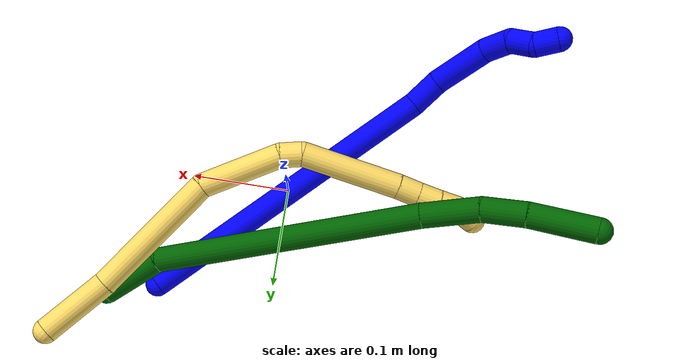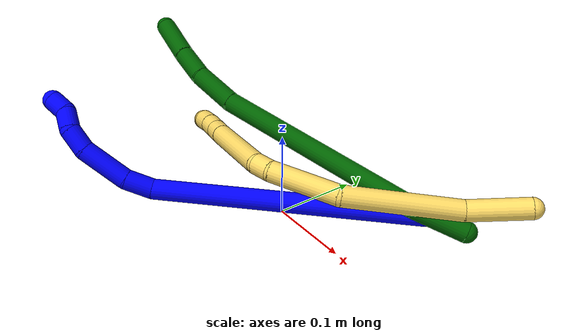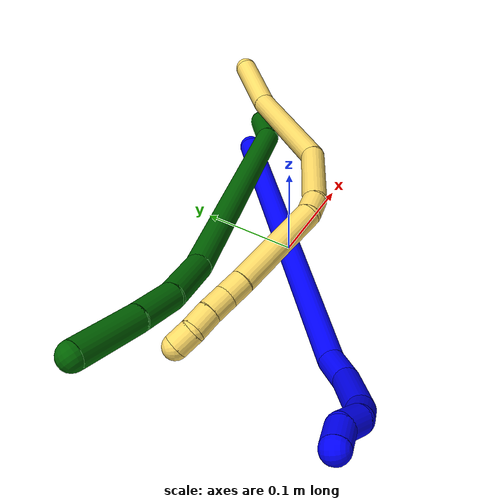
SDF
<sdf version="1.7">
 <world name="default">
  <model name="photoneo_s_sensor">
   <static>1</static>
   <pose>0 0 2 1.57079 1.57079 3.14159</pose>
   <link name="link">
    <inertial><mass>0.1</mass></inertial>
    <sensor name="sensor" type="depth">
     <update_rate>30</update_rate>
     <camera>
      <horizontal_fov>1.22</horizontal_fov>
      <image><width>1920</width><height>1200</height><format>B8G8R8</format></image>
      <clip><near>0.1</near><far>4</far></clip>
      <depth_camera><output>points</output></depth_camera>
     </camera>
     <plugin name="camera_plugin" filename="libgazebo_ros_depth_camera.so">
      <baseline>0.2</baseline>
      <alwaysOn>1</alwaysOn>
      <updateRate>0.0</updateRate>
      <cameraName>camera_ir</cameraName>
      <imageTopicName>/camera/color/image_raw</imageTopicName>
      <cameraInfoTopicName>/camera/color/camera_info</cameraInfoTopicName>
      <depthImageTopicName>/camera/depth/image_raw</depthImageTopicName>
      <depthImageCameraInfoTopicName>/camera/depth/camera_info</depthImageCameraInfoTopicName>
      <pointCloudTopicName>/camera/depth/points</pointCloudTopicName>
      <frameName>fr_optical</frameName>
      <pointCloudCutoff>0.1</pointCloudCutoff>
      <pointCloudCutoffMax>2.0</pointCloudCutoffMax>
      <distortionK1>0</distortionK1>
      <distortionK2>0</distortionK2>
      <distortionK3>0</distortionK3>
      <distortionT1>0</distortionT1>
      <distortionT2>0</distortionT2>
      <CxPrime>0</CxPrime>
      <Cx>0</Cx>
      <Cy>0</Cy>
      <focalLength>0</focalLength>
      <hackBaseline>0</hackBaseline>
     </plugin>
    </sensor>
   </link>
  </model>
  <model name="bin">
   <static>1</static>
   <link name="bottom">
    <collision name="collision-bottom">
     <pose>0 0 -0.01 0 -0 0</pose>
     <geometry><box><size>0.8 0.6 0.02</size></box></geometry>
     <surface>
      <friction><ode><mu>100</mu><mu2>100</mu2></ode></friction>
      <contact><collide_bitmask>65535</collide_bitmask></contact>
     </surface>
    </collision>
   </link>
   <link name="west_wall">
    <collision name="collision-west_wall">
     <pose>-0.41 0 0.1 0 -0 0</pose>
     <geometry><box><size>0.02 0.6 0.2</size></box></geometry>
     <surface>
      <friction><ode><mu>100</mu><mu2>100</mu2></ode></friction>
      <contact><collide_bitmask>65535</collide_bitmask></contact>
     </surface>
    </collision>
   </link>
   <link name="east_wall">
    <collision name="collision-east_wall">
     <pose>0.41 0 0.1 0 -0 0</pose>
     <geometry><box><size>0.02 0.6 0.2</size></box></geometry>
     <surface>
      <friction><ode><mu>100</mu><mu2>100</mu2></ode></friction>
      <contact><collide_bitmask>65535</collide_bitmask></contact>
     </surface>
    </collision>
   </link>
   <link name="south_wall">
    <collision name="collision-south_wall">
     <pose>0 -0.31 0.1 0 -0 0</pose>
     <geometry><box><size>0.8 0.02 0.2</size></box></geometry>
     <surface>
      <friction><ode><mu>100</mu><mu2>100</mu2></ode></friction>
      <contact><collide_bitmask>65535</collide_bitmask></contact>
     </surface>
    </collision>
   </link>
   <link name="north_wall">
    <collision name="collision-north_wall">
     <pose>0 0.31 0.1 0 -0 0</pose>
     <geometry><box><size>0.8 0.02 0.2</size></box></geometry>
     <surface>
      <friction><ode><mu>100</mu><mu2>100</mu2></ode></friction>
      <contact><collide_bitmask>65535</collide_bitmask></contact>
     </surface>
    </collision>
   </link>
  </model>
  <model name="1">
   <static>0</static>
   <link name="1">
    <collision name="collision-cylinder-e_1_1_4">
     <pose>-0.103109 -0.102557 0.071631 0.961112 -0.689351 -0.370032</pose>
     <geometry><cylinder><radius>0.0125</radius><length>0.324224</length></cylinder></geometry>
     <surface>
      <friction><ode><mu>1.16</mu><mu2>1.16</mu2><slip1>0</slip1><slip2>0</slip2></ode></friction>
      <contact><ode><kp>1e+06</kp><kd>1</kd><max_vel>0</max_vel><min_depth>0.001</min_depth></ode></contact>
     </surface>
    </collision>
    <visual name="visual-cylinder-e_1_1_4">
     <pose>-0.103109 -0.102557 0.071631 0.961112 -0.689351 -0.370032</pose>
     <geometry><cylinder><radius>0.0125</radius><length>0.324224</length></cylinder></geometry>
     <material><ambient>0 0 1 1</ambient></material>
    </visual>
    <collision name="collision-cylinder-e_2_4_5">
     <pose>-0.218855 -0.21055 0.153871 0.473524 -0.814499 -0.207419</pose>
     <geometry><cylinder><radius>0.0125</radius><length>0.034744</length></cylinder></geometry>
     <surface>
      <friction><ode><mu>1.16</mu><mu2>1.16</mu2><slip1>0</slip1><slip2>0</slip2></ode></friction>
      <contact><ode><kp>1e+06</kp><kd>1</kd><max_vel>0</max_vel><min_depth>0.001</min_depth></ode></contact>
     </surface>
    </collision>
    <visual name="visual-cylinder-e_2_4_5">
     <pose>-0.218855 -0.21055 0.153871 0.473524 -0.814499 -0.207419</pose>
     <geometry><cylinder><radius>0.0125</radius><length>0.034744</length></cylinder></geometry>
     <material><ambient>0 0 1 1</ambient></material>
    </visual>
    <collision name="collision-cylinder-e_3_5_6">
     <pose>-0.257876 -0.219699 0.178747 0.254612 -1.06127 -0.14993</pose>
     <geometry><cylinder><radius>0.0125</radius><length>0.060449</length></cylinder></geometry>
     <surface>
      <friction><ode><mu>1.16</mu><mu2>1.16</mu2><slip1>0</slip1><slip2>0</slip2></ode></friction>
      <contact><ode><kp>1e+06</kp><kd>1</kd><max_vel>0</max_vel><min_depth>0.001</min_depth></ode></contact>
     </surface>
    </collision>
    <visual name="visual-cylinder-e_3_5_6">
     <pose>-0.257876 -0.219699 0.178747 0.254612 -1.06127 -0.14993</pose>
     <geometry><cylinder><radius>0.0125</radius><length>0.060449</length></cylinder></geometry>
     <material><ambient>0 0 1 1</ambient></material>
    </visual>
    <collision name="collision-cylinder-e_4_6_7">
     <pose>-0.29866 -0.221781 0.196983 -0.39005 -1.28113 0.292395</pose>
     <geometry><cylinder><radius>0.0125</radius><length>0.030049</length></cylinder></geometry>
     <surface>
      <friction><ode><mu>1.16</mu><mu2>1.16</mu2><slip1>0</slip1><slip2>0</slip2></ode></friction>
      <contact><ode><kp>1e+06</kp><kd>1</kd><max_vel>0</max_vel><min_depth>0.001</min_depth></ode></contact>
     </surface>
    </collision>
    <visual name="visual-cylinder-e_4_6_7">
     <pose>-0.29866 -0.221781 0.196983 -0.39005 -1.28113 0.292395</pose>
     <geometry><cylinder><radius>0.0125</radius><length>0.030049</length></cylinder></geometry>
     <material><ambient>0 0 1 1</ambient></material>
    </visual>
    <collision name="collision-cylinder-e_5_7_8">
     <pose>-0.32575 -0.218411 0.198278 -2.56547 -1.3246 2.41535</pose>
     <geometry><cylinder><radius>0.0125</radius><length>0.026172</length></cylinder></geometry>
     <surface>
      <friction><ode><mu>1.16</mu><mu2>1.16</mu2><slip1>0</slip1><slip2>0</slip2></ode></friction>
      <contact><ode><kp>1e+06</kp><kd>1</kd><max_vel>0</max_vel><min_depth>0.001</min_depth></ode></contact>
     </surface>
    </collision>
    <visual name="visual-cylinder-e_5_7_8">
     <pose>-0.32575 -0.218411 0.198278 -2.56547 -1.3246 2.41535</pose>
     <geometry><cylinder><radius>0.0125</radius><length>0.026172</length></cylinder></geometry>
     <material><ambient>0 0 1 1</ambient></material>
    </visual>
    <collision name="collision-cylinder-e_6_8_2">
     <pose>-0.350124 -0.219725 0.197213 1.08536 -1.2837 -0.846969</pose>
     <geometry><cylinder><radius>0.0125</radius><length>0.024362</length></cylinder></geometry>
     <surface>
      <friction><ode><mu>1.16</mu><mu2>1.16</mu2><slip1>0</slip1><slip2>0</slip2></ode></friction>
      <contact><ode><kp>1e+06</kp><kd>1</kd><max_vel>0</max_vel><min_depth>0.001</min_depth></ode></contact>
     </surface>
    </collision>
    <visual name="visual-cylinder-e_6_8_2">
     <pose>-0.350124 -0.219725 0.197213 1.08536 -1.2837 -0.846969</pose>
     <geometry><cylinder><radius>0.0125</radius><length>0.024362</length></cylinder></geometry>
     <material><ambient>0 0 1 1</ambient></material>
    </visual>
    <collision name="collision-sphere-2">
     <pose>-0.361806 -0.222775 0.198822 0 -0 0</pose>
     <geometry><sphere><radius>0.0125</radius></sphere></geometry>
     <surface>
      <friction><ode><mu>1.16</mu><mu2>1.16</mu2><slip1>0</slip1><slip2>0</slip2></ode></friction>
      <contact><ode><kp>1e+06</kp><kd>1</kd><max_vel>0</max_vel><min_depth>0.001</min_depth></ode></contact>
     </surface>
    </collision>
    <visual name="visual-sphere-2">
     <pose>-0.361806 -0.222775 0.198822 0 -0 0</pose>
     <geometry><sphere><radius>0.0125</radius></sphere></geometry>
     <material><ambient>0 0 1 1</ambient></material>
    </visual>
    <collision name="collision-sphere-4">
     <pose>-0.206219 -0.205113 0.143261 0 -0 0</pose>
     <geometry><sphere><radius>0.0125</radius></sphere></geometry>
     <surface>
      <friction><ode><mu>1.16</mu><mu2>1.16</mu2><slip1>0</slip1><slip2>0</slip2></ode></friction>
      <contact><ode><kp>1e+06</kp><kd>1</kd><max_vel>0</max_vel><min_depth>0.001</min_depth></ode></contact>
     </surface>
    </collision>
    <visual name="visual-sphere-4">
     <pose>-0.206219 -0.205113 0.143261 0 -0 0</pose>
     <geometry><sphere><radius>0.0125</radius></sphere></geometry>
     <material><ambient>0 0 1 1</ambient></material>
    </visual>
    <collision name="collision-sphere-1">
     <geometry><sphere><radius>0.0125</radius></sphere></geometry>
     <surface>
      <friction><ode><mu>1.16</mu><mu2>1.16</mu2><slip1>0</slip1><slip2>0</slip2></ode></friction>
      <contact><ode><kp>1e+06</kp><kd>1</kd><max_vel>0</max_vel><min_depth>0.001</min_depth></ode></contact>
     </surface>
    </collision>
    <visual name="visual-sphere-1">
     <geometry><sphere><radius>0.0125</radius></sphere></geometry>
     <material><ambient>0 0 1 1</ambient></material>
    </visual>
    <collision name="collision-sphere-8">
     <pose>-0.338441 -0.216674 0.195604 0 -0 0</pose>
     <geometry><sphere><radius>0.0125</radius></sphere></geometry>
     <surface>
      <friction><ode><mu>1.16</mu><mu2>1.16</mu2><slip1>0</slip1><slip2>0</slip2></ode></friction>
      <contact><ode><kp>1e+06</kp><kd>1</kd><max_vel>0</max_vel><min_depth>0.001</min_depth></ode></contact>
     </surface>
    </collision>
    <visual name="visual-sphere-8">
     <pose>-0.338441 -0.216674 0.195604 0 -0 0</pose>
     <geometry><sphere><radius>0.0125</radius></sphere></geometry>
     <material><ambient>0 0 1 1</ambient></material>
    </visual>
    <collision name="collision-sphere-5">
     <pose>-0.23149 -0.215986 0.16448 0 -0 0</pose>
     <geometry><sphere><radius>0.0125</radius></sphere></geometry>
     <surface>
      <friction><ode><mu>1.16</mu><mu2>1.16</mu2><slip1>0</slip1><slip2>0</slip2></ode></friction>
      <contact><ode><kp>1e+06</kp><kd>1</kd><max_vel>0</max_vel><min_depth>0.001</min_depth></ode></contact>
     </surface>
    </collision>
    <visual name="visual-sphere-5">
     <pose>-0.23149 -0.215986 0.16448 0 -0 0</pose>
     <geometry><sphere><radius>0.0125</radius></sphere></geometry>
     <material><ambient>0 0 1 1</ambient></material>
    </visual>
    <collision name="collision-sphere-6">
     <pose>-0.284261 -0.223412 0.193014 0 -0 0</pose>
     <geometry><sphere><radius>0.0125</radius></sphere></geometry>
     <surface>
      <friction><ode><mu>1.16</mu><mu2>1.16</mu2><slip1>0</slip1><slip2>0</slip2></ode></friction>
      <contact><ode><kp>1e+06</kp><kd>1</kd><max_vel>0</max_vel><min_depth>0.001</min_depth></ode></contact>
     </surface>
    </collision>
    <visual name="visual-sphere-6">
     <pose>-0.284261 -0.223412 0.193014 0 -0 0</pose>
     <geometry><sphere><radius>0.0125</radius></sphere></geometry>
     <material><ambient>0 0 1 1</ambient></material>
    </visual>
    <collision name="collision-sphere-7">
     <pose>-0.313058 -0.220149 0.200952 0 -0 0</pose>
     <geometry><sphere><radius>0.0125</radius></sphere></geometry>
     <surface>
      <friction><ode><mu>1.16</mu><mu2>1.16</mu2><slip1>0</slip1><slip2>0</slip2></ode></friction>
      <contact><ode><kp>1e+06</kp><kd>1</kd><max_vel>0</max_vel><min_depth>0.001</min_depth></ode></contact>
     </surface>
    </collision>
    <visual name="visual-sphere-7">
     <pose>-0.313058 -0.220149 0.200952 0 -0 0</pose>
     <geometry><sphere><radius>0.0125</radius></sphere></geometry>
     <material><ambient>0 0 1 1</ambient></material>
    </visual>
    <inertial>
     <pose>-0.165305 -0.143161 0.110577 0 -0 0</pose>
     <mass>0.5</mass>
     <inertia>
      <ixx>0.00124</ixx>
      <ixy>0</ixy>
      <ixz>0</ixz>
      <iyy>0.001279</iyy>
      <iyz>0</iyz>
      <izz>0.003668</izz>
     </inertia>
    </inertial>
   </link>
   <pose>0.115462 0.117802 0.011497 1.14411 0.553497 0.050867</pose>
  </model>
  <model name="5">
   <static>0</static>
   <link name="5">
    <collision name="collision-cylinder-e_1_1_4">
     <pose>-0.034849 -0.009348 0.000205 1.54887 -1.30867 -1.28755</pose>
     <geometry><cylinder><radius>0.0125</radius><length>0.072163</length></cylinder></geometry>
     <surface>
      <friction><ode><mu>1.16</mu><mu2>1.16</mu2><slip1>0</slip1><slip2>0</slip2></ode></friction>
      <contact><ode><kp>1e+06</kp><kd>1</kd><max_vel>0</max_vel><min_depth>0.001</min_depth></ode></contact>
     </surface>
    </collision>
    <visual name="visual-cylinder-e_1_1_4">
     <pose>-0.034849 -0.009348 0.000205 1.54887 -1.30867 -1.28755</pose>
     <geometry><cylinder><radius>0.0125</radius><length>0.072163</length></cylinder></geometry>
     <material><ambient>1 0.858824 0.4 1</ambient></material>
    </visual>
    <collision name="collision-cylinder-e_2_4_5">
     <pose>-0.129884 -0.051434 -0.003203 1.68071 -1.07006 -1.16912</pose>
     <geometry><cylinder><radius>0.0125</radius><length>0.13722</length></cylinder></geometry>
     <surface>
      <friction><ode><mu>1.16</mu><mu2>1.16</mu2><slip1>0</slip1><slip2>0</slip2></ode></friction>
      <contact><ode><kp>1e+06</kp><kd>1</kd><max_vel>0</max_vel><min_depth>0.001</min_depth></ode></contact>
     </surface>
    </collision>
    <visual name="visual-cylinder-e_2_4_5">
     <pose>-0.129884 -0.051434 -0.003203 1.68071 -1.07006 -1.16912</pose>
     <geometry><cylinder><radius>0.0125</radius><length>0.13722</length></cylinder></geometry>
     <material><ambient>1 0.858824 0.4 1</ambient></material>
    </visual>
    <collision name="collision-cylinder-e_3_5_6">
     <pose>-0.22473 -0.101766 0.008065 0.86871 -0.984062 -0.487419</pose>
     <geometry><cylinder><radius>0.0125</radius><length>0.08324</length></cylinder></geometry>
     <surface>
      <friction><ode><mu>1.16</mu><mu2>1.16</mu2><slip1>0</slip1><slip2>0</slip2></ode></friction>
      <contact><ode><kp>1e+06</kp><kd>1</kd><max_vel>0</max_vel><min_depth>0.001</min_depth></ode></contact>
     </surface>
    </collision>
    <visual name="visual-cylinder-e_3_5_6">
     <pose>-0.22473 -0.101766 0.008065 0.86871 -0.984062 -0.487419</pose>
     <geometry><cylinder><radius>0.0125</radius><length>0.08324</length></cylinder></geometry>
     <material><ambient>1 0.858824 0.4 1</ambient></material>
    </visual>
    <collision name="collision-cylinder-e_4_6_7">
     <pose>-0.267408 -0.122443 0.029669 0.430103 -0.825739 -0.190784</pose>
     <geometry><cylinder><radius>0.0125</radius><length>0.021819</length></cylinder></geometry>
     <surface>
      <friction><ode><mu>1.16</mu><mu2>1.16</mu2><slip1>0</slip1><slip2>0</slip2></ode></friction>
      <contact><ode><kp>1e+06</kp><kd>1</kd><max_vel>0</max_vel><min_depth>0.001</min_depth></ode></contact>
     </surface>
    </collision>
    <visual name="visual-cylinder-e_4_6_7">
     <pose>-0.267408 -0.122443 0.029669 0.430103 -0.825739 -0.190784</pose>
     <geometry><cylinder><radius>0.0125</radius><length>0.021819</length></cylinder></geometry>
     <material><ambient>1 0.858824 0.4 1</ambient></material>
    </visual>
    <collision name="collision-cylinder-e_5_7_8">
     <pose>-0.302255 -0.127141 0.078482 0.038305 -0.567134 -0.011164</pose>
     <geometry><cylinder><radius>0.0125</radius><length>0.099876</length></cylinder></geometry>
     <surface>
      <friction><ode><mu>1.16</mu><mu2>1.16</mu2><slip1>0</slip1><slip2>0</slip2></ode></friction>
      <contact><ode><kp>1e+06</kp><kd>1</kd><max_vel>0</max_vel><min_depth>0.001</min_depth></ode></contact>
     </surface>
    </collision>
    <visual name="visual-cylinder-e_5_7_8">
     <pose>-0.302255 -0.127141 0.078482 0.038305 -0.567134 -0.011164</pose>
     <geometry><cylinder><radius>0.0125</radius><length>0.099876</length></cylinder></geometry>
     <material><ambient>1 0.858824 0.4 1</ambient></material>
    </visual>
    <collision name="collision-cylinder-e_6_8_9">
     <pose>-0.334413 -0.128612 0.129898 -0.0152 -0.519177 0.004037</pose>
     <geometry><cylinder><radius>0.0125</radius><length>0.021487</length></cylinder></geometry>
     <surface>
      <friction><ode><mu>1.16</mu><mu2>1.16</mu2><slip1>0</slip1><slip2>0</slip2></ode></friction>
      <contact><ode><kp>1e+06</kp><kd>1</kd><max_vel>0</max_vel><min_depth>0.001</min_depth></ode></contact>
     </surface>
    </collision>
    <visual name="visual-cylinder-e_6_8_9">
     <pose>-0.334413 -0.128612 0.129898 -0.0152 -0.519177 0.004037</pose>
     <geometry><cylinder><radius>0.0125</radius><length>0.021487</length></cylinder></geometry>
     <material><ambient>1 0.858824 0.4 1</ambient></material>
    </visual>
    <collision name="collision-cylinder-e_7_9_10">
     <pose>-0.345255 -0.128779 0.148655 0.032743 -0.528644 -0.008863</pose>
     <geometry><cylinder><radius>0.0125</radius><length>0.021854</length></cylinder></geometry>
     <surface>
      <friction><ode><mu>1.16</mu><mu2>1.16</mu2><slip1>0</slip1><slip2>0</slip2></ode></friction>
      <contact><ode><kp>1e+06</kp><kd>1</kd><max_vel>0</max_vel><min_depth>0.001</min_depth></ode></contact>
     </surface>
    </collision>
    <visual name="visual-cylinder-e_7_9_10">
     <pose>-0.345255 -0.128779 0.148655 0.032743 -0.528644 -0.008863</pose>
     <geometry><cylinder><radius>0.0125</radius><length>0.021854</length></cylinder></geometry>
     <material><ambient>1 0.858824 0.4 1</ambient></material>
    </visual>
    <collision name="collision-cylinder-e_8_10_11">
     <pose>-0.356899 -0.128912 0.167198 -0.019248 -0.592303 0.005873</pose>
     <geometry><cylinder><radius>0.0125</radius><length>0.021971</length></cylinder></geometry>
     <surface>
      <friction><ode><mu>1.16</mu><mu2>1.16</mu2><slip1>0</slip1><slip2>0</slip2></ode></friction>
      <contact><ode><kp>1e+06</kp><kd>1</kd><max_vel>0</max_vel><min_depth>0.001</min_depth></ode></contact>
     </surface>
    </collision>
    <visual name="visual-cylinder-e_8_10_11">
     <pose>-0.356899 -0.128912 0.167198 -0.019248 -0.592303 0.005873</pose>
     <geometry><cylinder><radius>0.0125</radius><length>0.021971</length></cylinder></geometry>
     <material><ambient>1 0.858824 0.4 1</ambient></material>
    </visual>
    <collision name="collision-cylinder-e_9_11_2">
     <pose>-0.366931 -0.124736 0.184826 -0.439227 -0.392843 0.088775</pose>
     <geometry><cylinder><radius>0.0125</radius><length>0.02037</length></cylinder></geometry>
     <surface>
      <friction><ode><mu>1.16</mu><mu2>1.16</mu2><slip1>0</slip1><slip2>0</slip2></ode></friction>
      <contact><ode><kp>1e+06</kp><kd>1</kd><max_vel>0</max_vel><min_depth>0.001</min_depth></ode></contact>
     </surface>
    </collision>
    <visual name="visual-cylinder-e_9_11_2">
     <pose>-0.366931 -0.124736 0.184826 -0.439227 -0.392843 0.088775</pose>
     <geometry><cylinder><radius>0.0125</radius><length>0.02037</length></cylinder></geometry>
     <material><ambient>1 0.858824 0.4 1</ambient></material>
    </visual>
    <collision name="collision-sphere-2">
     <pose>-0.37083 -0.120735 0.193342 0 -0 0</pose>
     <geometry><sphere><radius>0.0125</radius></sphere></geometry>
     <surface>
      <friction><ode><mu>1.16</mu><mu2>1.16</mu2><slip1>0</slip1><slip2>0</slip2></ode></friction>
      <contact><ode><kp>1e+06</kp><kd>1</kd><max_vel>0</max_vel><min_depth>0.001</min_depth></ode></contact>
     </surface>
    </collision>
    <visual name="visual-sphere-2">
     <pose>-0.37083 -0.120735 0.193342 0 -0 0</pose>
     <geometry><sphere><radius>0.0125</radius></sphere></geometry>
     <material><ambient>1 0.858824 0.4 1</ambient></material>
    </visual>
    <collision name="collision-sphere-11">
     <pose>-0.363032 -0.128737 0.17631 0 -0 0</pose>
     <geometry><sphere><radius>0.0125</radius></sphere></geometry>
     <surface>
      <friction><ode><mu>1.16</mu><mu2>1.16</mu2><slip1>0</slip1><slip2>0</slip2></ode></friction>
      <contact><ode><kp>1e+06</kp><kd>1</kd><max_vel>0</max_vel><min_depth>0.001</min_depth></ode></contact>
     </surface>
    </collision>
    <visual name="visual-sphere-11">
     <pose>-0.363032 -0.128737 0.17631 0 -0 0</pose>
     <geometry><sphere><radius>0.0125</radius></sphere></geometry>
     <material><ambient>1 0.858824 0.4 1</ambient></material>
    </visual>
    <collision name="collision-sphere-10">
     <pose>-0.350767 -0.129088 0.158085 0 -0 0</pose>
     <geometry><sphere><radius>0.0125</radius></sphere></geometry>
     <surface>
      <friction><ode><mu>1.16</mu><mu2>1.16</mu2><slip1>0</slip1><slip2>0</slip2></ode></friction>
      <contact><ode><kp>1e+06</kp><kd>1</kd><max_vel>0</max_vel><min_depth>0.001</min_depth></ode></contact>
     </surface>
    </collision>
    <visual name="visual-sphere-10">
     <pose>-0.350767 -0.129088 0.158085 0 -0 0</pose>
     <geometry><sphere><radius>0.0125</radius></sphere></geometry>
     <material><ambient>1 0.858824 0.4 1</ambient></material>
    </visual>
    <collision name="collision-sphere-9">
     <pose>-0.339744 -0.12847 0.139225 0 -0 0</pose>
     <geometry><sphere><radius>0.0125</radius></sphere></geometry>
     <surface>
      <friction><ode><mu>1.16</mu><mu2>1.16</mu2><slip1>0</slip1><slip2>0</slip2></ode></friction>
      <contact><ode><kp>1e+06</kp><kd>1</kd><max_vel>0</max_vel><min_depth>0.001</min_depth></ode></contact>
     </surface>
    </collision>
    <visual name="visual-sphere-9">
     <pose>-0.339744 -0.12847 0.139225 0 -0 0</pose>
     <geometry><sphere><radius>0.0125</radius></sphere></geometry>
     <material><ambient>1 0.858824 0.4 1</ambient></material>
    </visual>
    <collision name="collision-sphere-4">
     <pose>-0.069698 -0.018696 0.00041 0 -0 0</pose>
     <geometry><sphere><radius>0.0125</radius></sphere></geometry>
     <surface>
      <friction><ode><mu>1.16</mu><mu2>1.16</mu2><slip1>0</slip1><slip2>0</slip2></ode></friction>
      <contact><ode><kp>1e+06</kp><kd>1</kd><max_vel>0</max_vel><min_depth>0.001</min_depth></ode></contact>
     </surface>
    </collision>
    <visual name="visual-sphere-4">
     <pose>-0.069698 -0.018696 0.00041 0 -0 0</pose>
     <geometry><sphere><radius>0.0125</radius></sphere></geometry>
     <material><ambient>1 0.858824 0.4 1</ambient></material>
    </visual>
    <collision name="collision-sphere-1">
     <geometry><sphere><radius>0.0125</radius></sphere></geometry>
     <surface>
      <friction><ode><mu>1.16</mu><mu2>1.16</mu2><slip1>0</slip1><slip2>0</slip2></ode></friction>
      <contact><ode><kp>1e+06</kp><kd>1</kd><max_vel>0</max_vel><min_depth>0.001</min_depth></ode></contact>
     </surface>
    </collision>
    <visual name="visual-sphere-1">
     <geometry><sphere><radius>0.0125</radius></sphere></geometry>
     <material><ambient>1 0.858824 0.4 1</ambient></material>
    </visual>
    <collision name="collision-sphere-8">
     <pose>-0.329083 -0.128754 0.120571 0 -0 0</pose>
     <geometry><sphere><radius>0.0125</radius></sphere></geometry>
     <surface>
      <friction><ode><mu>1.16</mu><mu2>1.16</mu2><slip1>0</slip1><slip2>0</slip2></ode></friction>
      <contact><ode><kp>1e+06</kp><kd>1</kd><max_vel>0</max_vel><min_depth>0.001</min_depth></ode></contact>
     </surface>
    </collision>
    <visual name="visual-sphere-8">
     <pose>-0.329083 -0.128754 0.120571 0 -0 0</pose>
     <geometry><sphere><radius>0.0125</radius></sphere></geometry>
     <material><ambient>1 0.858824 0.4 1</ambient></material>
    </visual>
    <collision name="collision-sphere-5">
     <pose>-0.190071 -0.084173 -0.006816 0 -0 0</pose>
     <geometry><sphere><radius>0.0125</radius></sphere></geometry>
     <surface>
      <friction><ode><mu>1.16</mu><mu2>1.16</mu2><slip1>0</slip1><slip2>0</slip2></ode></friction>
      <contact><ode><kp>1e+06</kp><kd>1</kd><max_vel>0</max_vel><min_depth>0.001</min_depth></ode></contact>
     </surface>
    </collision>
    <visual name="visual-sphere-5">
     <pose>-0.190071 -0.084173 -0.006816 0 -0 0</pose>
     <geometry><sphere><radius>0.0125</radius></sphere></geometry>
     <material><ambient>1 0.858824 0.4 1</ambient></material>
    </visual>
    <collision name="collision-sphere-6">
     <pose>-0.259389 -0.119359 0.022946 0 -0 0</pose>
     <geometry><sphere><radius>0.0125</radius></sphere></geometry>
     <surface>
      <friction><ode><mu>1.16</mu><mu2>1.16</mu2><slip1>0</slip1><slip2>0</slip2></ode></friction>
      <contact><ode><kp>1e+06</kp><kd>1</kd><max_vel>0</max_vel><min_depth>0.001</min_depth></ode></contact>
     </surface>
    </collision>
    <visual name="visual-sphere-6">
     <pose>-0.259389 -0.119359 0.022946 0 -0 0</pose>
     <geometry><sphere><radius>0.0125</radius></sphere></geometry>
     <material><ambient>1 0.858824 0.4 1</ambient></material>
    </visual>
    <collision name="collision-sphere-7">
     <pose>-0.275428 -0.125528 0.036392 0 -0 0</pose>
     <geometry><sphere><radius>0.0125</radius></sphere></geometry>
     <surface>
      <friction><ode><mu>1.16</mu><mu2>1.16</mu2><slip1>0</slip1><slip2>0</slip2></ode></friction>
      <contact><ode><kp>1e+06</kp><kd>1</kd><max_vel>0</max_vel><min_depth>0.001</min_depth></ode></contact>
     </surface>
    </collision>
    <visual name="visual-sphere-7">
     <pose>-0.275428 -0.125528 0.036392 0 -0 0</pose>
     <geometry><sphere><radius>0.0125</radius></sphere></geometry>
     <material><ambient>1 0.858824 0.4 1</ambient></material>
    </visual>
    <inertial>
     <pose>-0.210227 -0.085049 0.044421 0 -0 0</pose>
     <mass>0.5</mass>
     <inertia><ixx>0</ixx><ixy>0</ixy><ixz>0</ixz><iyy>0.000209</iyy><iyz>0</iyz><izz>0.000474</izz></inertia>
    </inertial>
   </link>
   <pose>0.209534 0.181423 0.04894 -1.51605 -0.363507 0.856033</pose>
  </model>
  <model name="6">
   <static>0</static>
   <link name="6">
    <collision name="collision-cylinder-e_1_1_4">
     <pose>-0.023016 -0.017046 -0.015417 2.30606 -0.786105 -1.50265</pose>
     <geometry><cylinder><radius>0.0125</radius><length>0.065054</length></cylinder></geometry>
     <surface>
      <friction><ode><mu>1.16</mu><mu2>1.16</mu2><slip1>0</slip1><slip2>0</slip2></ode></friction>
      <contact><ode><kp>1e+06</kp><kd>1</kd><max_vel>0</max_vel><min_depth>0.001</min_depth></ode></contact>
     </surface>
    </collision>
    <visual name="visual-cylinder-e_1_1_4">
     <pose>-0.023016 -0.017046 -0.015417 2.30606 -0.786105 -1.50265</pose>
     <geometry><cylinder><radius>0.0125</radius><length>0.065054</length></cylinder></geometry>
     <material><ambient>0 0.392157 0.003922 1</ambient></material>
    </visual>
    <collision name="collision-cylinder-e_2_4_5">
     <pose>-0.167311 -0.06498 -0.078411 2.56577 -1.13331 -2.27035</pose>
     <geometry><cylinder><radius>0.0125</radius><length>0.267778</length></cylinder></geometry>
     <surface>
      <friction><ode><mu>1.16</mu><mu2>1.16</mu2><slip1>0</slip1><slip2>0</slip2></ode></friction>
      <contact><ode><kp>1e+06</kp><kd>1</kd><max_vel>0</max_vel><min_depth>0.001</min_depth></ode></contact>
     </surface>
    </collision>
    <visual name="visual-cylinder-e_2_4_5">
     <pose>-0.167311 -0.06498 -0.078411 2.56577 -1.13331 -2.27035</pose>
     <geometry><cylinder><radius>0.0125</radius><length>0.267778</length></cylinder></geometry>
     <material><ambient>0 0.392157 0.003922 1</ambient></material>
    </visual>
    <collision name="collision-cylinder-e_3_5_6">
     <pose>-0.315852 -0.104576 -0.131796 2.15895 -1.20422 -1.81847</pose>
     <geometry><cylinder><radius>0.0125</radius><length>0.058404</length></cylinder></geometry>
     <surface>
      <friction><ode><mu>1.16</mu><mu2>1.16</mu2><slip1>0</slip1><slip2>0</slip2></ode></friction>
      <contact><ode><kp>1e+06</kp><kd>1</kd><max_vel>0</max_vel><min_depth>0.001</min_depth></ode></contact>
     </surface>
    </collision>
    <visual name="visual-cylinder-e_3_5_6">
     <pose>-0.315852 -0.104576 -0.131796 2.15895 -1.20422 -1.81847</pose>
     <geometry><cylinder><radius>0.0125</radius><length>0.058404</length></cylinder></geometry>
     <material><ambient>0 0.392157 0.003922 1</ambient></material>
    </visual>
    <collision name="collision-cylinder-e_4_6_7">
     <pose>-0.364684 -0.116789 -0.138347 1.78 -1.40615 -1.61614</pose>
     <geometry><cylinder><radius>0.0125</radius><length>0.043732</length></cylinder></geometry>
     <surface>
      <friction><ode><mu>1.16</mu><mu2>1.16</mu2><slip1>0</slip1><slip2>0</slip2></ode></friction>
      <contact><ode><kp>1e+06</kp><kd>1</kd><max_vel>0</max_vel><min_depth>0.001</min_depth></ode></contact>
     </surface>
    </collision>
    <visual name="visual-cylinder-e_4_6_7">
     <pose>-0.364684 -0.116789 -0.138347 1.78 -1.40615 -1.61614</pose>
     <geometry><cylinder><radius>0.0125</radius><length>0.043732</length></cylinder></geometry>
     <material><ambient>0 0.392157 0.003922 1</ambient></material>
    </visual>
    <collision name="collision-cylinder-e_5_7_2">
     <pose>-0.418692 -0.122483 -0.138517 1.31419 -1.50116 -1.24742</pose>
     <geometry><cylinder><radius>0.0125</radius><length>0.065033</length></cylinder></geometry>
     <surface>
      <friction><ode><mu>1.16</mu><mu2>1.16</mu2><slip1>0</slip1><slip2>0</slip2></ode></friction>
      <contact><ode><kp>1e+06</kp><kd>1</kd><max_vel>0</max_vel><min_depth>0.001</min_depth></ode></contact>
     </surface>
    </collision>
    <visual name="visual-cylinder-e_5_7_2">
     <pose>-0.418692 -0.122483 -0.138517 1.31419 -1.50116 -1.24742</pose>
     <geometry><cylinder><radius>0.0125</radius><length>0.065033</length></cylinder></geometry>
     <material><ambient>0 0.392157 0.003922 1</ambient></material>
    </visual>
    <collision name="collision-sphere-2">
     <pose>-0.451129 -0.124672 -0.137943 0 -0 0</pose>
     <geometry><sphere><radius>0.0125</radius></sphere></geometry>
     <surface>
      <friction><ode><mu>1.16</mu><mu2>1.16</mu2><slip1>0</slip1><slip2>0</slip2></ode></friction>
      <contact><ode><kp>1e+06</kp><kd>1</kd><max_vel>0</max_vel><min_depth>0.001</min_depth></ode></contact>
     </surface>
    </collision>
    <visual name="visual-sphere-2">
     <pose>-0.451129 -0.124672 -0.137943 0 -0 0</pose>
     <geometry><sphere><radius>0.0125</radius></sphere></geometry>
     <material><ambient>0 0.392157 0.003922 1</ambient></material>
    </visual>
    <collision name="collision-sphere-7">
     <pose>-0.386255 -0.120295 -0.139091 0 -0 0</pose>
     <geometry><sphere><radius>0.0125</radius></sphere></geometry>
     <surface>
      <friction><ode><mu>1.16</mu><mu2>1.16</mu2><slip1>0</slip1><slip2>0</slip2></ode></friction>
      <contact><ode><kp>1e+06</kp><kd>1</kd><max_vel>0</max_vel><min_depth>0.001</min_depth></ode></contact>
     </surface>
    </collision>
    <visual name="visual-sphere-7">
     <pose>-0.386255 -0.120295 -0.139091 0 -0 0</pose>
     <geometry><sphere><radius>0.0125</radius></sphere></geometry>
     <material><ambient>0 0.392157 0.003922 1</ambient></material>
    </visual>
    <collision name="collision-sphere-6">
     <pose>-0.343114 -0.113284 -0.137603 0 -0 0</pose>
     <geometry><sphere><radius>0.0125</radius></sphere></geometry>
     <surface>
      <friction><ode><mu>1.16</mu><mu2>1.16</mu2><slip1>0</slip1><slip2>0</slip2></ode></friction>
      <contact><ode><kp>1e+06</kp><kd>1</kd><max_vel>0</max_vel><min_depth>0.001</min_depth></ode></contact>
     </surface>
    </collision>
    <visual name="visual-sphere-6">
     <pose>-0.343114 -0.113284 -0.137603 0 -0 0</pose>
     <geometry><sphere><radius>0.0125</radius></sphere></geometry>
     <material><ambient>0 0.392157 0.003922 1</ambient></material>
    </visual>
    <collision name="collision-sphere-5">
     <pose>-0.28859 -0.095868 -0.125988 0 -0 0</pose>
     <geometry><sphere><radius>0.0125</radius></sphere></geometry>
     <surface>
      <friction><ode><mu>1.16</mu><mu2>1.16</mu2><slip1>0</slip1><slip2>0</slip2></ode></friction>
      <contact><ode><kp>1e+06</kp><kd>1</kd><max_vel>0</max_vel><min_depth>0.001</min_depth></ode></contact>
     </surface>
    </collision>
    <visual name="visual-sphere-5">
     <pose>-0.28859 -0.095868 -0.125988 0 -0 0</pose>
     <geometry><sphere><radius>0.0125</radius></sphere></geometry>
     <material><ambient>0 0.392157 0.003922 1</ambient></material>
    </visual>
    <collision name="collision-sphere-1">
     <geometry><sphere><radius>0.0125</radius></sphere></geometry>
     <surface>
      <friction><ode><mu>1.16</mu><mu2>1.16</mu2><slip1>0</slip1><slip2>0</slip2></ode></friction>
      <contact><ode><kp>1e+06</kp><kd>1</kd><max_vel>0</max_vel><min_depth>0.001</min_depth></ode></contact>
     </surface>
    </collision>
    <visual name="visual-sphere-1">
     <geometry><sphere><radius>0.0125</radius></sphere></geometry>
     <material><ambient>0 0.392157 0.003922 1</ambient></material>
    </visual>
    <collision name="collision-sphere-4">
     <pose>-0.046032 -0.034092 -0.030834 0 -0 0</pose>
     <geometry><sphere><radius>0.0125</radius></sphere></geometry>
     <surface>
      <friction><ode><mu>1.16</mu><mu2>1.16</mu2><slip1>0</slip1><slip2>0</slip2></ode></friction>
      <contact><ode><kp>1e+06</kp><kd>1</kd><max_vel>0</max_vel><min_depth>0.001</min_depth></ode></contact>
     </surface>
    </collision>
    <visual name="visual-sphere-4">
     <pose>-0.046032 -0.034092 -0.030834 0 -0 0</pose>
     <geometry><sphere><radius>0.0125</radius></sphere></geometry>
     <material><ambient>0 0.392157 0.003922 1</ambient></material>
    </visual>
    <inertial>
     <pose>-0.215847 -0.075379 -0.089511 0 -0 0</pose>
     <mass>0.5</mass>
     <inertia>
      <ixx>-0.001024</ixx>
      <ixy>0</ixy>
      <ixz>0</ixz>
      <iyy>0.000981</iyy>
      <iyz>0</iyz>
      <izz>0.001911</izz>
     </inertia>
    </inertial>
   </link>
   <pose>0.164954 0.133179 0.011489 -0.972577 0.229809 -0.142842</pose>
  </model>
 </world>
</sdf>
